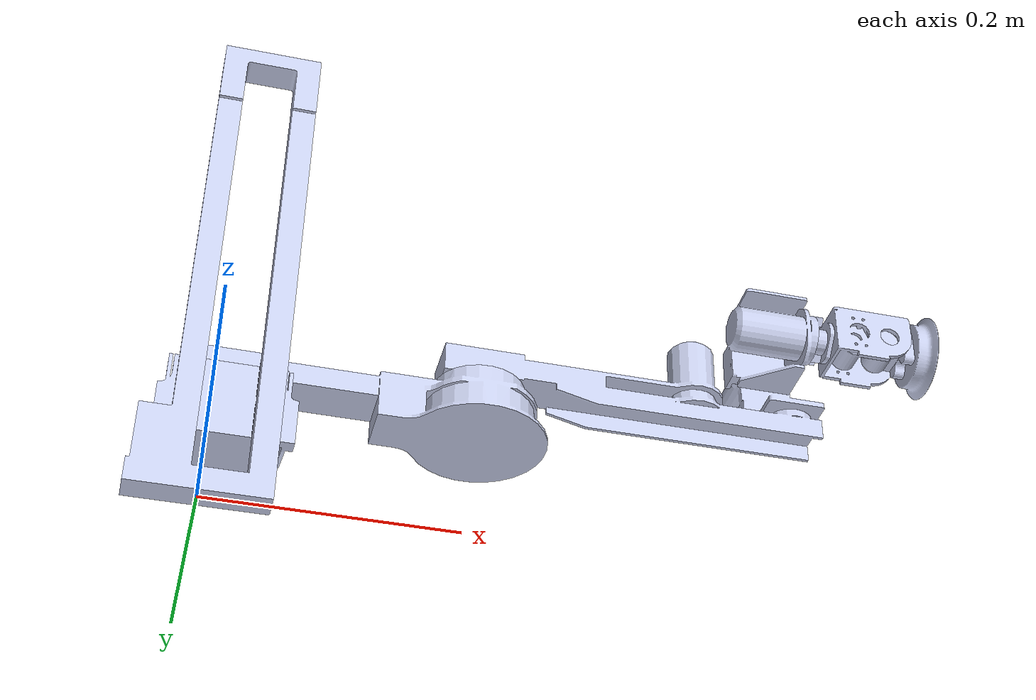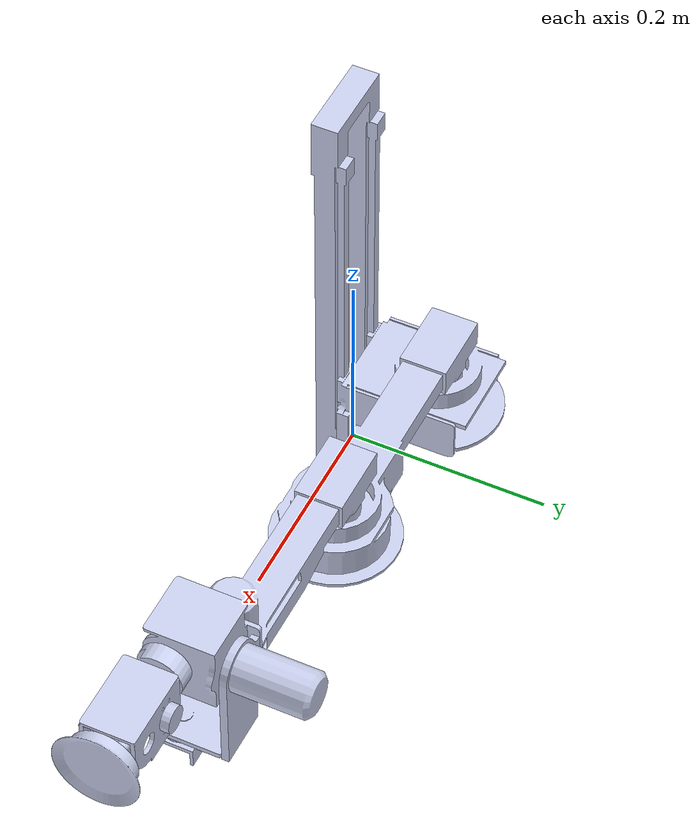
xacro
<?xml version="1.0"?>
<robot xmlns:xacro="http://www.ros.org/wiki/xacro" name="scara_description">
    <xacro:arg name="initial_positions_file" default="initial_positions.yaml" />

    <!-- Import scara_description urdf file -->
    <xacro:include filename="$(find scara_description)/urdf/scara_description.urdf" />

    <!-- Import control_xacro -->
    <xacro:include filename="scara_description.ros2_control.xacro" />

    <xacro:scara_description_ros2_control name="RealScara" initial_positions_file="$(arg initial_positions_file)"/>

</robot>

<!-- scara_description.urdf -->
<robot
  name="scara_description">
  <link
    name="base_link">
    <inertial>
      <origin
        xyz="0.0057621332343482 0.00285775270200555 0.193189380051916"
        rpy="0 0 0" />
      <mass
        value="0.57217968365953" />
      <inertia
        ixx="0.0124278422911613"
        ixy="4.96126683289887E-05"
        ixz="-0.000724082970449908"
        iyy="0.0130268328944623"
        iyz="0.000255561135289622"
        izz="0.000728269847627912" />
    </inertial>
    <visual>
      <origin
        xyz="0 0 0"
        rpy="0 0 0" />
      <geometry>
        <mesh
          filename="package://scara_description/meshes/base_link.STL" />
      </geometry>
      <material
        name="">
        <color
          rgba="0.792156862745098 0.819607843137255 0.933333333333333 1" />
      </material>
    </visual>
    <collision>
      <origin
        xyz="0 0 0"
        rpy="0 0 0" />
      <geometry>
        <mesh
          filename="package://scara_description/meshes/base_link.STL" />
      </geometry>
    </collision>
  </link>
  <link
    name="link1">
    <inertial>
      <origin
        xyz="0.0138321265029742 0.0695548003003947 0.124171706108288"
        rpy="0 0 0" />
      <mass
        value="0.27252514896887" />
      <inertia
        ixx="0.000571622269742261"
        ixy="1.08172931699114E-06"
        ixz="-1.42679992540951E-06"
        iyy="0.000398558077561348"
        iyz="-0.000118201456526435"
        izz="0.000667634937011231" />
    </inertial>
    <visual>
      <origin
        xyz="0 0 0"
        rpy="0 0 0" />
      <geometry>
        <mesh
          filename="package://scara_description/meshes/link1.STL" />
      </geometry>
      <material
        name="">
        <color
          rgba="0.792156862745098 0.819607843137255 0.933333333333333 1" />
      </material>
    </visual>
    <collision>
      <origin
        xyz="0 0 0"
        rpy="0 0 0" />
      <geometry>
        <mesh
          filename="package://scara_description/meshes/link1.STL" />
      </geometry>
    </collision>
  </link>
  <joint
    name="joint1"
    type="prismatic">
    <origin
      xyz="0 0 0"
      rpy="0 0 0" />
    <parent
      link="base_link" />
    <child
      link="link1" />
    <axis
      xyz="0 0 -1" />
    <limit
      lower="-0.25245"
      upper="0"
      effort="200"
      velocity="3" />
  </joint>
  <link
    name="link2">
    <inertial>
      <origin
        xyz="0.151219366961841 2.77555756156289E-17 0.0335829435916624"
        rpy="0 0 0" />
      <mass
        value="0.580917463575827" />
      <inertia
        ixx="0.000327730819903859"
        ixy="-9.67593407106374E-20"
        ixz="0.000146927246084188"
        iyy="0.00436977800756494"
        iyz="2.49232979655035E-19"
        izz="0.00450856517326053" />
    </inertial>
    <visual>
      <origin
        xyz="0 0 0"
        rpy="0 0 0" />
      <geometry>
        <mesh
          filename="package://scara_description/meshes/link2.STL" />
      </geometry>
      <material
        name="">
        <color
          rgba="0.792156862745098 0.819607843137255 0.933333333333333 1" />
      </material>
    </visual>
    <collision>
      <origin
        xyz="0 0 0"
        rpy="0 0 0" />
      <geometry>
        <mesh
          filename="package://scara_description/meshes/link2.STL" />
      </geometry>
    </collision>
  </link>
  <joint
    name="joint2"
    type="revolute">
    <origin
      xyz="0.014 0.0935 0.1372"
      rpy="0 0 0" />
    <parent
      link="link1" />
    <child
      link="link2" />
    <axis
      xyz="0 0 1" />
    <limit
      lower="-0.7854"
      upper="1.7977"
      effort="200"
      velocity="3" />
  </joint>
  <link
    name="link3">
    <inertial>
      <origin
        xyz="-1.38777878078145E-17 0.120570098997035 0.0414479064127798"
        rpy="0 0 0" />
      <mass
        value="0.300947531370299" />
      <inertia
        ixx="0.00309266769969678"
        ixy="-1.12554934406237E-19"
        ixz="-1.51741714335356E-20"
        iyy="0.00016611302475049"
        iyz="-0.000174741077577407"
        izz="0.00302343360822394" />
    </inertial>
    <visual>
      <origin
        xyz="0 0 0"
        rpy="0 0 0" />
      <geometry>
        <mesh
          filename="package://scara_description/meshes/link3.STL" />
      </geometry>
      <material
        name="">
        <color
          rgba="0.792156862745098 0.819607843137255 0.933333333333333 1" />
      </material>
    </visual>
    <collision>
      <origin
        xyz="0 0 0"
        rpy="0 0 0" />
      <geometry>
        <mesh
          filename="package://scara_description/meshes/link3.STL" />
      </geometry>
    </collision>
  </link>
  <joint
    name="joint3"
    type="revolute">
    <origin
      xyz="0.215 0 0.0453999999999997"
      rpy="0 0 -1.5707963267949" />
    <parent
      link="link2" />
    <child
      link="link3" />
    <axis
      xyz="0 0 1" />
    <limit
      lower="-2.618"
      upper="2.618"
      effort="200"
      velocity="3" />
  </joint>
  <link
    name="link4">
    <inertial>
      <origin
        xyz="0.000911907177548854 -0.0674185686260867 0.0693671054879262"
        rpy="0 0 0" />
      <mass
        value="0.161315962203164" />
      <inertia
        ixx="0.00040056998946175"
        ixy="-4.10216369660939E-06"
        ixz="4.75822222243618E-06"
        iyy="0.000252675454451169"
        iyz="0.000142989851619656"
        izz="0.000199381329691318" />
    </inertial>
    <visual>
      <origin
        xyz="0 0 0"
        rpy="0 0 0" />
      <geometry>
        <mesh
          filename="package://scara_description/meshes/link4.STL" />
      </geometry>
      <material
        name="">
        <color
          rgba="0.792156862745098 0.819607843137255 0.933333333333333 1" />
      </material>
    </visual>
    <collision>
      <origin
        xyz="0 0 0"
        rpy="0 0 0" />
      <geometry>
        <mesh
          filename="package://scara_description/meshes/link4.STL" />
      </geometry>
    </collision>
  </link>
  <joint
    name="joint4"
    type="revolute">
    <origin
      xyz="0 0.285 0.0416"
      rpy="0 0 -1.5707963267949" />
    <parent
      link="link3" />
    <child
      link="link4" />
    <axis
      xyz="0 0 1" />
    <limit
      lower="-2.6698"
      upper="3.0025"
      effort="200"
      velocity="3" />
  </joint>
  <link
    name="link5">
    <inertial>
      <origin
        xyz="0.00605536000839357 -0.00127524114842326 0.0394789472938122"
        rpy="0 0 0" />
      <mass
        value="0.158985625581691" />
      <inertia
        ixx="9.24577513113223E-05"
        ixy="-1.5445864125732E-06"
        ixz="-7.96961415230022E-07"
        iyy="0.000134712959630509"
        iyz="3.89855502623123E-06"
        izz="0.000119738799533511" />
    </inertial>
    <visual>
      <origin
        xyz="0 0 0"
        rpy="0 0 0" />
      <geometry>
        <mesh
          filename="package://scara_description/meshes/link5.STL" />
      </geometry>
      <material
        name="">
        <color
          rgba="0.792156862745098 0.819607843137255 0.933333333333333 1" />
      </material>
    </visual>
    <collision>
      <origin
        xyz="0 0 0"
        rpy="0 0 0" />
      <geometry>
        <mesh
          filename="package://scara_description/meshes/link5.STL" />
      </geometry>
    </collision>
  </link>
  <joint
    name="joint5"
    type="revolute">
    <origin
      xyz="0 -0.047 0.092"
      rpy="-1.5707963267949 0 0" />
    <parent
      link="link4" />
    <child
      link="link5" />
    <axis
      xyz="0 0 -1" />
    <limit
      lower="0.0"
      upper="0.69813"
      effort="200"
      velocity="3" />
  </joint>
  <link
    name="link6">
    <inertial>
      <origin
        xyz="-0.00355403590625505 -0.00251181168132289 -0.0510095609592032"
        rpy="0 0 0" />
      <mass
        value="0.0717968221721647" />
      <inertia
        ixx="5.56065583559543E-05"
        ixy="7.72628005861415E-07"
        ixz="-4.6344552032925E-06"
        iyy="4.79357175536453E-05"
        iyz="2.19980245329151E-07"
        izz="3.33722393714322E-05" />
    </inertial>
    <visual>
      <origin
        xyz="0 0 0"
        rpy="0 0 0" />
      <geometry>
        <mesh
          filename="package://scara_description/meshes/link6.STL" />
      </geometry>
      <material
        name="">
        <color
          rgba="0.792156862745098 0.819607843137255 0.933333333333333 1" />
      </material>
    </visual>
    <collision>
      <origin
        xyz="0 0 0"
        rpy="0 0 0" />
      <geometry>
        <mesh
          filename="package://scara_description/meshes/link6.STL" />
      </geometry>
    </collision>
  </link>
  <joint
    name="joint6"
    type="revolute">
    <origin
      xyz="-0.0178499999999999 0 0.048"
      rpy="1.5707963267949 0 1.5707963267949" />
    <parent
      link="link5" />
    <child
      link="link6" />
    <axis
      xyz="0 0 1" />
    <limit
      lower="-1.5708"
      upper="1.5708"
      effort="200"
      velocity="3" />
  </joint>
  <link
    name="link7">
    <inertial>
      <origin
        xyz="-0.0112224969341433 2.77555756156289E-17 -1.38777878078145E-17"
        rpy="0 0 0" />
      <mass
        value="0.0281299504553923" />
      <inertia
        ixx="4.36826634068471E-06"
        ixy="5.20286234456131E-21"
        ixz="1.71012922866411E-22"
        iyy="6.50865119427316E-06"
        iyz="1.1254987768263E-20"
        izz="4.81664015522416E-06" />
    </inertial>
    <visual>
      <origin
        xyz="0 0 0"
        rpy="0 0 0" />
      <geometry>
        <mesh
          filename="package://scara_description/meshes/link7.STL" />
      </geometry>
      <material
        name="">
        <color
          rgba="0.792156862745098 0.819607843137255 0.933333333333333 1" />
      </material>
    </visual>
    <collision>
      <origin
        xyz="0 0 0"
        rpy="0 0 0" />
      <geometry>
        <mesh
          filename="package://scara_description/meshes/link7.STL" />
      </geometry>
    </collision>
  </link>
  <joint
    name="joint7"
    type="revolute">
    <origin
      xyz="0 0 -0.078405"
      rpy="1.5708 -1.5708 0" />
    <parent
      link="link6" />
    <child
      link="link7" />
    <axis
      xyz="0 0 1" />
    <limit
      lower="-0.17453"
      upper="1.5708"
      effort="200"
      velocity="3" />
  </joint>
  <link
    name="link8">
    <inertial>
      <origin
        xyz="-0.0355732119020791 2.77555756156289E-17 9.71445146547012E-17"
        rpy="0 0 0" />
      <mass
        value="0.0374587379875856" />
      <inertia
        ixx="1.91779993839597E-05"
        ixy="-2.01711871875207E-20"
        ixz="-9.55306611337375E-21"
        iyy="1.01343765382842E-05"
        iyz="-9.83806034622694E-22"
        izz="1.01343765382842E-05" />
    </inertial>
    <visual>
      <origin
        xyz="0 0 0"
        rpy="0 0 0" />
      <geometry>
        <mesh
          filename="package://scara_description/meshes/link8.STL" />
      </geometry>
      <material
        name="">
        <color
          rgba="0.792156862745098 0.819607843137255 0.933333333333333 1" />
      </material>
    </visual>
    <collision>
      <origin
        xyz="0 0 0"
        rpy="0 0 0" />
      <geometry>
        <mesh
          filename="package://scara_description/meshes/link8.STL" />
      </geometry>
    </collision>
  </link>
  <joint
    name="joint8"
    type="fixed">
    <origin
      xyz="0 0 0"
      rpy="0 0 0" />
    <parent
      link="link7" />
    <child
      link="link8" />
    <axis
      xyz="0 0 0" />
  </joint>
</robot>
